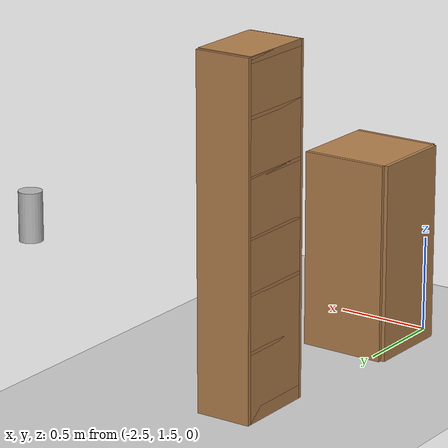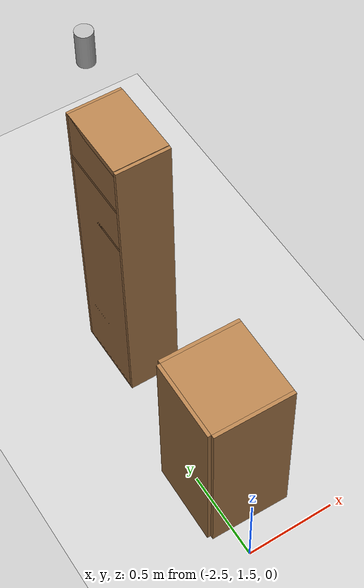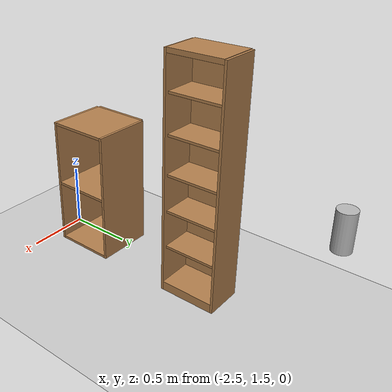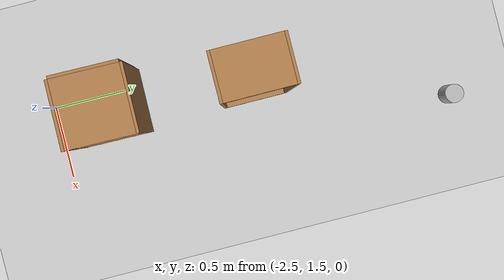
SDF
<sdf version="1.7">
 <world name="default">
  <physics type="ode">
   <max_step_size>0.001</max_step_size>
   <real_time_factor>1</real_time_factor>
   <real_time_update_rate>1000</real_time_update_rate>
  </physics>
  <light name="sun" type="directional">
   <pose>0 0 10 0 -0 0</pose>
   <diffuse>0.8 0.8 0.8 1</diffuse>
   <specular>0.2 0.2 0.2 1</specular>
   <attenuation>
    <range>1000</range>
    <constant>0.9</constant>
    <linear>0.01</linear>
    <quadratic>0.001</quadratic>
   </attenuation>
   <direction>-0.5 0.1 -0.9</direction>
   <spot><inner_angle>0</inner_angle><outer_angle>0</outer_angle><falloff>0</falloff></spot>
  </light>
  <model name="ground_plane">
   <static>1</static>
   <link name="link">
    <collision name="collision">
     <geometry><plane><normal>0 0 1</normal><size>100 100</size></plane></geometry>
     <surface>
      <contact><collide_bitmask>65535</collide_bitmask></contact>
      <friction><ode><mu>100</mu><mu2>50</mu2></ode></friction>
     </surface>
    </collision>
    <visual name="visual">
     <cast_shadows>0</cast_shadows>
     <geometry><plane><normal>0 0 1</normal><size>100 100</size></plane></geometry>
     <material>
      <script><uri>file://media/materials/scripts/gazebo.material</uri><name>Gazebo/Grey</name></script>
     </material>
    </visual>
   </link>
  </model>
  <gravity>0 0 -9.8</gravity>
  <magnetic_field>6e-06 2.3e-05 -4.2e-05</magnetic_field>
  <atmosphere type="adiabatic"/>
  <scene><ambient>0.4 0.4 0.4 1</ambient><background>0.7 0.7 0.7 1</background><shadows>1</shadows></scene>
  <spherical_coordinates>
   <surface_model>EARTH_WGS84</surface_model>
   <latitude_deg>0</latitude_deg>
   <longitude_deg>0</longitude_deg>
   <elevation>0</elevation>
   <heading_deg>0</heading_deg>
  </spherical_coordinates>
  <model name="cabinet">
   <static>1</static>
   <link name="cabinet_bottom_plate">
    <inertial>
     <pose>0 0 -1 0 -0 0</pose>
     <inertia><ixx>2.05</ixx><ixy>0</ixy><ixz>0</ixz><iyy>2.05</iyy><iyz>0</iyz><izz>2.05</izz></inertia>
     <mass>25</mass>
    </inertial>
    <collision name="cabinet_bottom_plate_geom">
     <pose>0 0 0.01 0 -0 0</pose>
     <geometry><box><size>0.45 0.45 0.02</size></box></geometry>
    </collision>
    <visual name="cabinet_bottom_plate_geom_visual">
     <pose>0 0 0.01 0 -0 0</pose>
     <geometry><box><size>0.45 0.45 0.02</size></box></geometry>
     <material>
      <script><uri>file://media/materials/scripts/gazebo.material</uri><name>Gazebo/Wood</name></script>
     </material>
    </visual>
    <collision name="cabinet_bottom_plate_geom_cabinet_back_plate">
     <pose>0.235 0 0.51 0 -0 0</pose>
     <geometry><box><size>0.02 0.45 1.02</size></box></geometry>
    </collision>
    <visual name="cabinet_bottom_plate_geom_cabinet_back_plate_visual">
     <pose>0.235 0 0.51 0 -0 0</pose>
     <geometry><box><size>0.02 0.45 1.02</size></box></geometry>
     <material>
      <script><uri>file://media/materials/scripts/gazebo.material</uri><name>Gazebo/Wood</name></script>
     </material>
    </visual>
    <collision name="cabinet_bottom_plate_geom_cabinet_left_plate">
     <pose>0 0.235 0.51 0 -0 0</pose>
     <geometry><box><size>0.45 0.02 1.02</size></box></geometry>
    </collision>
    <visual name="cabinet_bottom_plate_geom_cabinet_left_plate_visual">
     <pose>0 0.235 0.51 0 -0 0</pose>
     <geometry><box><size>0.45 0.02 1.02</size></box></geometry>
     <material>
      <script><uri>file://media/materials/scripts/gazebo.material</uri><name>Gazebo/Wood</name></script>
     </material>
    </visual>
    <collision name="cabinet_bottom_plate_geom_cabinet_middle_plate">
     <pose>0 0 0.51 0 -0 0</pose>
     <geometry><box><size>0.45 0.45 0.02</size></box></geometry>
    </collision>
    <visual name="cabinet_bottom_plate_geom_cabinet_middle_plate_visual">
     <pose>0 0 0.51 0 -0 0</pose>
     <geometry><box><size>0.45 0.45 0.02</size></box></geometry>
     <material>
      <script><uri>file://media/materials/scripts/gazebo.material</uri><name>Gazebo/Wood</name></script>
     </material>
    </visual>
    <collision name="cabinet_bottom_plate_geom_cabinet_right_plate">
     <pose>0 -0.235 0.51 0 -0 0</pose>
     <geometry><box><size>0.45 0.02 1.02</size></box></geometry>
    </collision>
    <visual name="cabinet_bottom_plate_geom_cabinet_right_plate_visual">
     <pose>0 -0.235 0.51 0 -0 0</pose>
     <geometry><box><size>0.45 0.02 1.02</size></box></geometry>
     <material>
      <script><uri>file://media/materials/scripts/gazebo.material</uri><name>Gazebo/Wood</name></script>
     </material>
    </visual>
    <collision name="cabinet_bottom_plate_geom_cabinet_top_plate">
     <pose>0 0 1.01 0 -0 0</pose>
     <geometry><box><size>0.45 0.45 0.02</size></box></geometry>
    </collision>
    <visual name="cabinet_bottom_plate_geom_cabinet_top_plate_visual">
     <pose>0 0 1.01 0 -0 0</pose>
     <geometry><box><size>0.45 0.45 0.02</size></box></geometry>
     <material>
      <script><uri>file://media/materials/scripts/gazebo.material</uri><name>Gazebo/Wood</name></script>
     </material>
    </visual>
   </link>
   <pose>-2.39846 1.89144 0.043099 0 -0 3.12767</pose>
  </model>
  <model name="beer">
   <link name="link">
    <pose>0 0 0.115 0 -0 0</pose>
    <inertial>
     <mass>0.39</mass>
     <inertia><ixx>0.00058</ixx><ixy>0</ixy><ixz>0</ixz><iyy>0.00058</iyy><iyz>0</iyz><izz>0.00019</izz></inertia>
    </inertial>
    <collision name="collision">
     <geometry><cylinder><radius>0.055</radius><length>0.23</length></cylinder></geometry>
    </collision>
    <visual name="visual">
     <geometry><cylinder><radius>0.055</radius><length>0.23</length></cylinder></geometry>
     <material>
      <script>
       <uri>model://beer/materials/scripts</uri>
       <uri>model://beer/materials/textures</uri>
       <name>Beer/Diffuse</name>
      </script>
     </material>
    </visual>
   </link>
   <pose>-1.93456 3.99845 1.06751 0.00797 0.002775 0.003662</pose>
  </model>
  <model name="high_shelf">
   <link name="link">
    <inertial>
     <mass>5</mass>
     <inertia><ixx>1</ixx><ixy>0</ixy><ixz>0</ixz><iyy>1</iyy><iyz>0</iyz><izz>1</izz></inertia>
    </inertial>
    <visual name="left_board">
     <pose>-0.1475 0.009 0.898 0 -0 0</pose>
     <geometry><box><size>0.295 0.018 1.796</size></box></geometry>
     <material>
      <script>
       <uri>model://base_materials/wood/scripts</uri>
       <uri>model://base_materials/wood/textures</uri>
       <name>base_materials/light_wood</name>
      </script>
     </material>
    </visual>
    <collision name="collision_left_board">
     <pose>-0.1475 0.009 0.898 0 -0 0</pose>
     <geometry><box><size>0.295 0.018 1.796</size></box></geometry>
    </collision>
    <visual name="right_board">
     <pose>-0.1475 0.441 0.898 0 -0 0</pose>
     <geometry><box><size>0.295 0.018 1.796</size></box></geometry>
     <material>
      <script>
       <uri>model://base_materials/wood/scripts</uri>
       <uri>model://base_materials/wood/textures</uri>
       <name>base_materials/light_wood</name>
      </script>
     </material>
    </visual>
    <collision name="collision_right_board">
     <pose>-0.1475 0.441 0.898 0 -0 0</pose>
     <geometry><box><size>0.295 0.018 1.796</size></box></geometry>
    </collision>
    <visual name="top_board">
     <pose>-0.1475 0.225 1.7825 0 -0 0</pose>
     <geometry><box><size>0.295 0.414 0.035</size></box></geometry>
     <material>
      <script>
       <uri>model://base_materials/wood/scripts</uri>
       <uri>model://base_materials/wood/textures</uri>
       <name>base_materials/light_wood</name>
      </script>
     </material>
    </visual>
    <collision name="collision_top_board">
     <pose>-0.1475 0.225 1.7825 0 -0 0</pose>
     <geometry><box><size>0.295 0.414 0.035</size></box></geometry>
    </collision>
    <visual name="1st_shelf">
     <pose>-0.162 0.225 1.51 0 -0 0</pose>
     <geometry><box><size>0.266 0.414 0.018</size></box></geometry>
     <material>
      <script>
       <uri>model://base_materials/wood/scripts</uri>
       <uri>model://base_materials/wood/textures</uri>
       <name>base_materials/light_wood</name>
      </script>
     </material>
    </visual>
    <collision name="collision_1st_shelf">
     <pose>-0.162 0.225 1.51 0 -0 0</pose>
     <geometry><box><size>0.266 0.414 0.018</size></box></geometry>
    </collision>
    <visual name="2nd_shelf">
     <pose>-0.162 0.225 1.22 0 -0 0</pose>
     <geometry><box><size>0.266 0.414 0.018</size></box></geometry>
     <material>
      <script>
       <uri>model://base_materials/wood/scripts</uri>
       <uri>model://base_materials/wood/textures</uri>
       <name>base_materials/light_wood</name>
      </script>
     </material>
    </visual>
    <collision name="collision_2nd_shelf">
     <pose>-0.162 0.225 1.22 0 -0 0</pose>
     <geometry><box><size>0.266 0.414 0.018</size></box></geometry>
    </collision>
    <visual name="3rd_shelf">
     <pose>-0.162 0.225 0.93 0 -0 0</pose>
     <geometry><box><size>0.266 0.414 0.018</size></box></geometry>
     <material>
      <script>
       <uri>model://base_materials/wood/scripts</uri>
       <uri>model://base_materials/wood/textures</uri>
       <name>base_materials/light_wood</name>
      </script>
     </material>
    </visual>
    <collision name="collision_3rd_shelf">
     <pose>-0.162 0.225 0.93 0 -0 0</pose>
     <geometry><box><size>0.266 0.414 0.018</size></box></geometry>
    </collision>
    <visual name="4th_shelf">
     <pose>-0.162 0.225 0.65 0 -0 0</pose>
     <geometry><box><size>0.266 0.414 0.018</size></box></geometry>
     <material>
      <script>
       <uri>model://base_materials/wood/scripts</uri>
       <uri>model://base_materials/wood/textures</uri>
       <name>base_materials/light_wood</name>
      </script>
     </material>
    </visual>
    <collision name="collision_4th_shelf">
     <pose>-0.162 0.225 0.65 0 -0 0</pose>
     <geometry><box><size>0.266 0.414 0.018</size></box></geometry>
    </collision>
    <visual name="5th_shelf">
     <pose>-0.162 0.225 0.36 0 -0 0</pose>
     <geometry><box><size>0.266 0.414 0.018</size></box></geometry>
     <material>
      <script>
       <uri>model://base_materials/wood/scripts</uri>
       <uri>model://base_materials/wood/textures</uri>
       <name>base_materials/light_wood</name>
      </script>
     </material>
    </visual>
    <collision name="collision_5th_shelf">
     <pose>-0.162 0.225 0.36 0 -0 0</pose>
     <geometry><box><size>0.266 0.414 0.018</size></box></geometry>
    </collision>
    <visual name="bottom_board">
     <pose>-0.1475 0.225 0.035 0 -0 0</pose>
     <geometry><box><size>0.295 0.414 0.07</size></box></geometry>
     <material>
      <script>
       <uri>model://base_materials/wood/scripts</uri>
       <uri>model://base_materials/wood/textures</uri>
       <name>base_materials/light_wood</name>
      </script>
     </material>
    </visual>
    <collision name="collision_bottom_board">
     <pose>-0.1475 0.225 0.035 0 -0 0</pose>
     <geometry><box><size>0.295 0.414 0.07</size></box></geometry>
    </collision>
    <visual name="back_board">
     <pose>-0.286 0.225 0.898 0 -0 0</pose>
     <geometry><box><size>0.018 0.414 1.796</size></box></geometry>
     <material>
      <script>
       <uri>model://base_materials/wood/scripts</uri>
       <uri>model://base_materials/wood/textures</uri>
       <name>base_materials/light_wood</name>
      </script>
     </material>
    </visual>
    <collision name="collision_back_board">
     <pose>-0.286 0.225 0.898 0 -0 0</pose>
     <geometry><box><size>0.018 0.414 1.796</size></box></geometry>
    </collision>
    <velocity_decay><linear>0</linear><angular>0</angular></velocity_decay>
   </link>
   <static>1</static>
   <pose>-2.20269 2.66088 0 0 -0 0</pose>
  </model>
 </world>
</sdf>
